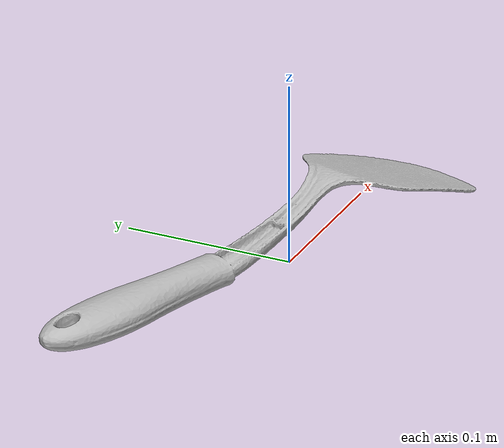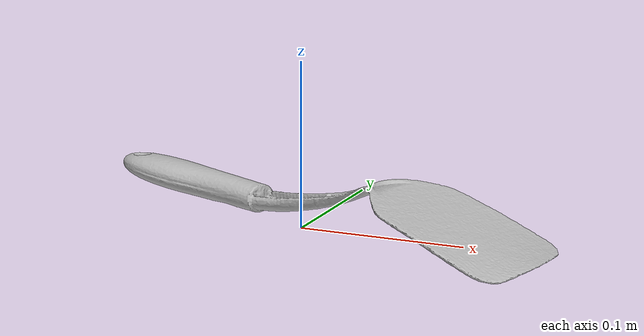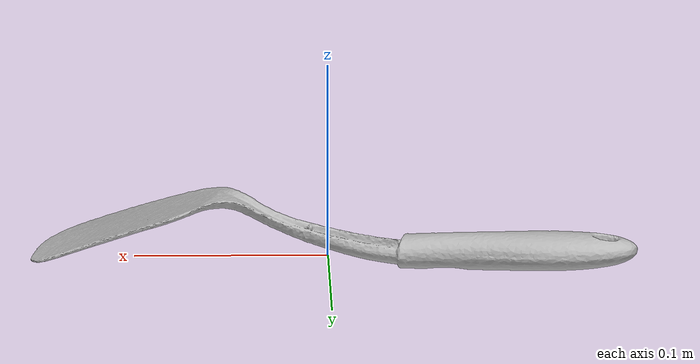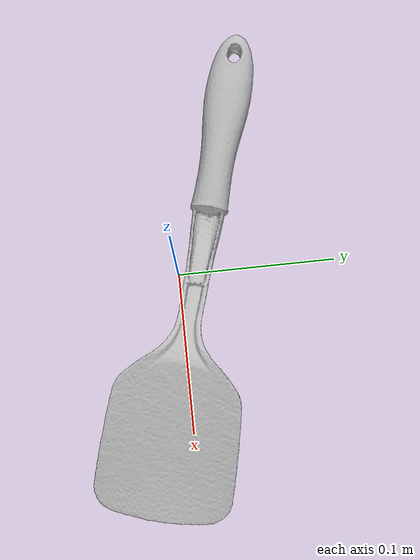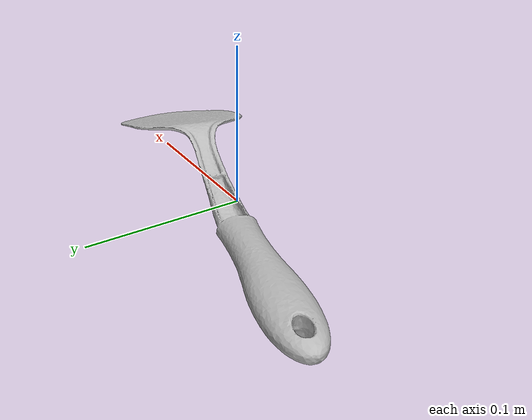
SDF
<?xml version="1.0" ?>
<sdf version='1.8'>
  <model name='ycb_033_spatula'>
    <link name='body'>
      <inertial>
        <mass>0.0515</mass>
        <pose>-0.0192340444 0.0182232516 0.0133821879 0 0 0</pose>
        <inertia>
          <ixx>4.44129346453e-05</ixx>
          <ixy>0.000121047271618</ixy>
          <ixz>-1.24693874857e-06</ixz>
          <iyy>0.000457266391943</iyy>
          <iyz>3.58764856595e-07</iyz>
          <izz>0.000497056490671</izz>
        </inertia>
      </inertial>
      <visual name='ycb_033_spatula_visual'>
        <pose>0.027347 0.096829 0.000193 0 0 0</pose>
        <geometry>
          <mesh>
            <uri>model://ycb_033_spatula/meshes/textured.dae</uri>
          </mesh>
        </geometry>
      </visual>
      <collision name='ycb_033_spatula_collision'>
        <pose>0.027347 0.096829 0.000193 0 0 0</pose>
        <geometry>
          <mesh>
            <uri>model://ycb_033_spatula/meshes/nontextured.stl</uri>
          </mesh>
        </geometry>
        <max_contacts>10</max_contacts>
        <surface>
          <contact>
            <ode>
              <kp>1e15</kp>
              <kd>1e13</kd>
            </ode>
          </contact>
        </surface>
      </collision>
    </link>
  </model>
</sdf>
